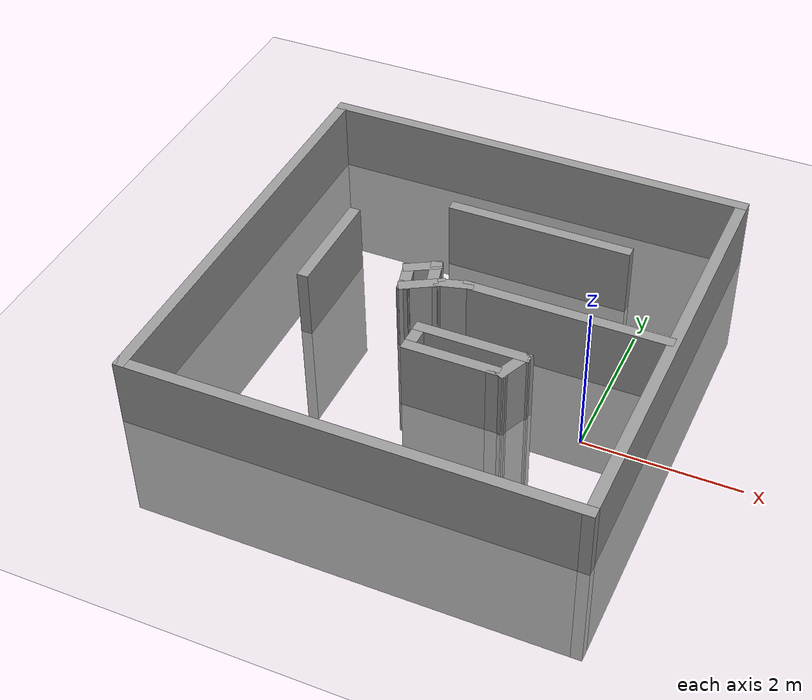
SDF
<sdf version="1.5">
 <world name="default">
  <light name="sun" type="directional">
   <pose>0 0 10 0 -0 0</pose>
   <diffuse>0.8 0.8 0.8 1</diffuse>
   <specular>0.2 0.2 0.2 1</specular>
   <attenuation>
    <range>1000</range>
    <constant>0.9</constant>
    <linear>0.01</linear>
    <quadratic>0.001</quadratic>
   </attenuation>
   <direction>-0.5 0.1 -0.9</direction>
  </light>
  <model name="ground_plane">
   <static>1</static>
   <link name="link">
    <collision name="collision">
     <geometry><plane><normal>0 0 1</normal><size>100 100</size></plane></geometry>
     <surface><friction><ode><mu>100</mu><mu2>50</mu2></ode></friction></surface>
    </collision>
    <visual name="visual">
     <cast_shadows>0</cast_shadows>
     <geometry><plane><normal>0 0 1</normal><size>100 100</size></plane></geometry>
     <material>
      <script><uri>file://media/materials/scripts/gazebo.material</uri><name>Gazebo/Grey</name></script>
     </material>
    </visual>
   </link>
  </model>
  <physics type="ode">
   <max_step_size>0.001</max_step_size>
   <real_time_factor>1</real_time_factor>
   <real_time_update_rate>1000</real_time_update_rate>
   <gravity>0 0 -9.8</gravity>
   <magnetic_field>5.5645e-06 2.28758e-05 -4.23884e-05</magnetic_field>
  </physics>
  <scene><ambient>0.4 0.4 0.4 1</ambient><background>0.7 0.7 0.7 1</background><shadows>1</shadows></scene>
  <spherical_coordinates>
   <surface_model>EARTH_WGS84</surface_model>
   <latitude_deg>0</latitude_deg>
   <longitude_deg>0</longitude_deg>
   <elevation>0</elevation>
   <heading_deg>0</heading_deg>
  </spherical_coordinates>
  <model name="Untitled">
   <pose>-2.20613 1.12406 -1.56605 0 0 -1.5708</pose>
   <link name="Wall_0">
    <collision name="Wall_0_Collision">
     <geometry><box><size>6 0.15 2.5</size></box></geometry>
     <pose>0 0 1.25 0 -0 0</pose>
    </collision>
    <visual name="Wall_0_Visual">
     <pose>0 0 1.25 0 -0 0</pose>
     <geometry><box><size>6 0.15 2.5</size></box></geometry>
     <material>
      <script><uri>file://media/materials/scripts/gazebo.material</uri><name>Gazebo/Grey</name></script>
      <ambient>1 1 1 1</ambient>
     </material>
    </visual>
    <pose>0 -2.925 0 0 -0 0</pose>
   </link>
   <link name="Wall_1">
    <collision name="Wall_1_Collision">
     <geometry><box><size>6 0.15 2.5</size></box></geometry>
     <pose>0 0 1.25 0 -0 0</pose>
    </collision>
    <visual name="Wall_1_Visual">
     <pose>0 0 1.25 0 -0 0</pose>
     <geometry><box><size>6 0.15 2.5</size></box></geometry>
     <material>
      <script><uri>file://media/materials/scripts/gazebo.material</uri><name>Gazebo/Grey</name></script>
      <ambient>1 1 1 1</ambient>
     </material>
    </visual>
    <pose>2.925 -0 0 0 -0 1.5708</pose>
   </link>
   <link name="Wall_10">
    <collision name="Wall_10_Collision">
     <geometry><box><size>0.25 0.15 2.5</size></box></geometry>
     <pose>0 0 1.25 0 -0 0</pose>
    </collision>
    <visual name="Wall_10_Visual">
     <pose>0 0 1.25 0 -0 0</pose>
     <geometry><box><size>0.25 0.15 2.5</size></box></geometry>
     <material>
      <script><uri>file://media/materials/scripts/gazebo.material</uri><name>Gazebo/Grey</name></script>
      <ambient>1 1 1 1</ambient>
     </material>
    </visual>
    <pose>1.3042 1.18909 0 0 -0 1.5708</pose>
   </link>
   <link name="Wall_11">
    <collision name="Wall_11_Collision">
     <geometry><box><size>0.530789 0.15 2.5</size></box></geometry>
     <pose>0 0 1.25 0 -0 0</pose>
    </collision>
    <visual name="Wall_11_Visual">
     <pose>0 0 1.25 0 -0 0</pose>
     <geometry><box><size>0.530789 0.15 2.5</size></box></geometry>
     <material>
      <script><uri>file://media/materials/scripts/gazebo.material</uri><name>Gazebo/Grey</name></script>
      <ambient>1 1 1 1</ambient>
     </material>
    </visual>
    <pose>1.1292 1.31409 0 0 -0 2.7367</pose>
   </link>
   <link name="Wall_13">
    <collision name="Wall_13_Collision">
     <geometry><box><size>2.75 0.15 2.5</size></box></geometry>
     <pose>0 0 1.25 0 -0 0</pose>
    </collision>
    <visual name="Wall_13_Visual">
     <pose>0 0 1.25 0 -0 0</pose>
     <geometry><box><size>2.75 0.15 2.5</size></box></geometry>
     <material>
      <script><uri>file://media/materials/scripts/gazebo.material</uri><name>Gazebo/Grey</name></script>
      <ambient>1 1 1 1</ambient>
     </material>
    </visual>
    <pose>0.00886 1.55738 0 0 0 -1.5708</pose>
   </link>
   <link name="Wall_14">
    <collision name="Wall_14_Collision">
     <geometry><box><size>0.5 0.15 2.5</size></box></geometry>
     <pose>0 0 1.25 0 -0 0</pose>
    </collision>
    <visual name="Wall_14_Visual">
     <pose>0 0 1.25 0 -0 0</pose>
     <geometry><box><size>0.5 0.15 2.5</size></box></geometry>
     <material>
      <script><uri>file://media/materials/scripts/gazebo.material</uri><name>Gazebo/Grey</name></script>
      <ambient>1 1 1 1</ambient>
     </material>
    </visual>
    <pose>0.054153 0.088344 0 0 0 -1.309</pose>
   </link>
   <link name="Wall_15">
    <collision name="Wall_15_Collision">
     <geometry><box><size>0.25 0.15 2.5</size></box></geometry>
     <pose>0 0 1.25 0 -0 0</pose>
    </collision>
    <visual name="Wall_15_Visual">
     <pose>0 0 1.25 0 -0 0</pose>
     <geometry><box><size>0.25 0.15 2.5</size></box></geometry>
     <material>
      <script><uri>file://media/materials/scripts/gazebo.material</uri><name>Gazebo/Grey</name></script>
      <ambient>1 1 1 1</ambient>
     </material>
    </visual>
    <pose>0.124446 -0.123995 0 0 0 -1.0472</pose>
   </link>
   <link name="Wall_16">
    <collision name="Wall_16_Collision">
     <geometry><box><size>0.5 0.15 2.5</size></box></geometry>
     <pose>0 0 1.25 0 -0 0</pose>
    </collision>
    <visual name="Wall_16_Visual">
     <pose>0 0 1.25 0 -0 0</pose>
     <geometry><box><size>0.5 0.15 2.5</size></box></geometry>
     <material>
      <script><uri>file://media/materials/scripts/gazebo.material</uri><name>Gazebo/Grey</name></script>
      <ambient>1 1 1 1</ambient>
     </material>
    </visual>
    <pose>0.236946 -0.318851 0 0 0 -1.0472</pose>
   </link>
   <link name="Wall_17">
    <collision name="Wall_17_Collision">
     <geometry><box><size>0.15 0.15 2.5</size></box></geometry>
     <pose>0 0 1.25 0 -0 0</pose>
    </collision>
    <visual name="Wall_17_Visual">
     <pose>0 0 1.25 0 -0 0</pose>
     <geometry><box><size>0.15 0.15 2.5</size></box></geometry>
     <material>
      <script><uri>file://media/materials/scripts/gazebo.material</uri><name>Gazebo/Grey</name></script>
      <ambient>1 1 1 1</ambient>
     </material>
    </visual>
    <pose>0.324446 -0.470405 0 0 -0 0</pose>
   </link>
   <link name="Wall_18">
    <collision name="Wall_18_Collision">
     <geometry><box><size>0.5 0.15 2.5</size></box></geometry>
     <pose>0 0 1.25 0 -0 0</pose>
    </collision>
    <visual name="Wall_18_Visual">
     <pose>0 0 1.25 0 -0 0</pose>
     <geometry><box><size>0.5 0.15 2.5</size></box></geometry>
     <material>
      <script><uri>file://media/materials/scripts/gazebo.material</uri><name>Gazebo/Grey</name></script>
      <ambient>1 1 1 1</ambient>
     </material>
    </visual>
    <pose>0.155409 -0.515698 0 0 0 -2.87979</pose>
   </link>
   <link name="Wall_19">
    <collision name="Wall_19_Collision">
     <geometry><box><size>0.5 0.15 2.5</size></box></geometry>
     <pose>0 0 1.25 0 -0 0</pose>
    </collision>
    <visual name="Wall_19_Visual">
     <pose>0 0 1.25 0 -0 0</pose>
     <geometry><box><size>0.5 0.15 2.5</size></box></geometry>
     <material>
      <script><uri>file://media/materials/scripts/gazebo.material</uri><name>Gazebo/Grey</name></script>
      <ambient>1 1 1 1</ambient>
     </material>
    </visual>
    <pose>-0.101128 -0.409437 0 0 -0 2.0944</pose>
   </link>
   <link name="Wall_2">
    <collision name="Wall_2_Collision">
     <geometry><box><size>6 0.15 2.5</size></box></geometry>
     <pose>0 0 1.25 0 -0 0</pose>
    </collision>
    <visual name="Wall_2_Visual">
     <pose>0 0 1.25 0 -0 0</pose>
     <geometry><box><size>6 0.15 2.5</size></box></geometry>
     <material>
      <script><uri>file://media/materials/scripts/gazebo.material</uri><name>Gazebo/Grey</name></script>
      <ambient>1 1 1 1</ambient>
     </material>
    </visual>
    <pose>0 2.925 0 0 -0 3.14159</pose>
   </link>
   <link name="Wall_20">
    <collision name="Wall_20_Collision">
     <geometry><box><size>0.5 0.15 2.5</size></box></geometry>
     <pose>0 0 1.25 0 -0 0</pose>
    </collision>
    <visual name="Wall_20_Visual">
     <pose>0 0 1.25 0 -0 0</pose>
     <geometry><box><size>0.5 0.15 2.5</size></box></geometry>
     <material>
      <script><uri>file://media/materials/scripts/gazebo.material</uri><name>Gazebo/Grey</name></script>
      <ambient>1 1 1 1</ambient>
     </material>
    </visual>
    <pose>-0.019591 -0.212589 0 0 -0 0.261799</pose>
   </link>
   <link name="Wall_22">
    <collision name="Wall_22_Collision">
     <geometry><box><size>2.5 0.15 2.5</size></box></geometry>
     <pose>0 0 1.25 0 -0 0</pose>
    </collision>
    <visual name="Wall_22_Visual">
     <pose>0 0 1.25 0 -0 0</pose>
     <geometry><box><size>2.5 0.15 2.5</size></box></geometry>
     <material>
      <script><uri>file://media/materials/scripts/gazebo.material</uri><name>Gazebo/Grey</name></script>
      <ambient>1 1 1 1</ambient>
     </material>
    </visual>
    <pose>-1.4192 0.656588 0 0 0 -1.5708</pose>
   </link>
   <link name="Wall_3">
    <collision name="Wall_3_Collision">
     <geometry><box><size>6 0.15 2.5</size></box></geometry>
     <pose>0 0 1.25 0 -0 0</pose>
    </collision>
    <visual name="Wall_3_Visual">
     <pose>0 0 1.25 0 -0 0</pose>
     <geometry><box><size>6 0.15 2.5</size></box></geometry>
     <material>
      <script><uri>file://media/materials/scripts/gazebo.material</uri><name>Gazebo/Grey</name></script>
      <ambient>1 1 1 1</ambient>
     </material>
    </visual>
    <pose>-2.925 -0 0 0 0 -1.5708</pose>
   </link>
   <link name="Wall_5">
    <collision name="Wall_5_Collision">
     <geometry><box><size>1.5 0.15 2.5</size></box></geometry>
     <pose>0 0 1.25 0 -0 0</pose>
    </collision>
    <visual name="Wall_5_Visual">
     <pose>0 0 1.25 0 -0 0</pose>
     <geometry><box><size>1.5 0.15 2.5</size></box></geometry>
     <material>
      <script><uri>file://media/materials/scripts/gazebo.material</uri><name>Gazebo/Grey</name></script>
      <ambient>1 1 1 1</ambient>
     </material>
    </visual>
    <pose>-0.080456 -1.7084 0 0 -0 0</pose>
   </link>
   <link name="Wall_7">
    <collision name="Wall_7_Collision">
     <geometry><box><size>1.5 0.15 2.5</size></box></geometry>
     <pose>0 0 1.25 0 -0 0</pose>
    </collision>
    <visual name="Wall_7_Visual">
     <pose>0 0 1.25 0 -0 0</pose>
     <geometry><box><size>1.5 0.15 2.5</size></box></geometry>
     <material>
      <script><uri>file://media/materials/scripts/gazebo.material</uri><name>Gazebo/Grey</name></script>
      <ambient>1 1 1 1</ambient>
     </material>
    </visual>
    <pose>0.954198 0.71409 0 0 0 -1.5708</pose>
   </link>
   <link name="Wall_8">
    <collision name="Wall_8_Collision">
     <geometry><box><size>0.5 0.15 2.5</size></box></geometry>
     <pose>0 0 1.25 0 -0 0</pose>
    </collision>
    <visual name="Wall_8_Visual">
     <pose>0 0 1.25 0 -0 0</pose>
     <geometry><box><size>0.5 0.15 2.5</size></box></geometry>
     <material>
      <script><uri>file://media/materials/scripts/gazebo.material</uri><name>Gazebo/Grey</name></script>
      <ambient>1 1 1 1</ambient>
     </material>
    </visual>
    <pose>1.1292 0.03909 0 0 -0 0</pose>
   </link>
   <link name="Wall_9">
    <collision name="Wall_9_Collision">
     <geometry><box><size>1.25 0.15 2.5</size></box></geometry>
     <pose>0 0 1.25 0 -0 0</pose>
    </collision>
    <visual name="Wall_9_Visual">
     <pose>0 0 1.25 0 -0 0</pose>
     <geometry><box><size>1.25 0.15 2.5</size></box></geometry>
     <material>
      <script><uri>file://media/materials/scripts/gazebo.material</uri><name>Gazebo/Grey</name></script>
      <ambient>1 1 1 1</ambient>
     </material>
    </visual>
    <pose>1.3042 0.58909 0 0 -0 1.5708</pose>
   </link>
   <static>1</static>
  </model>
 </world>
</sdf>
